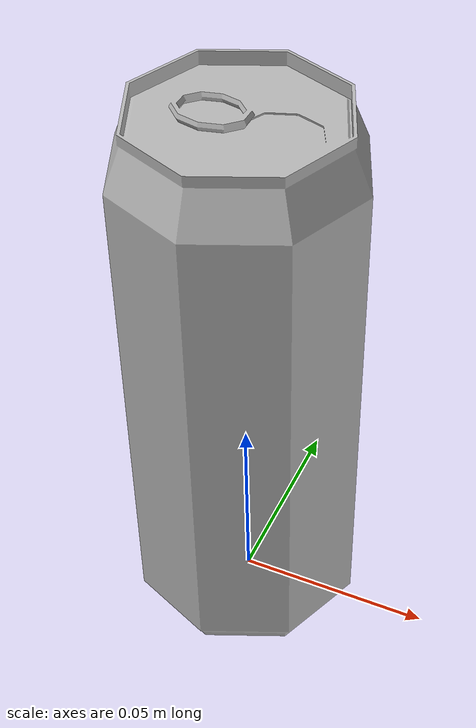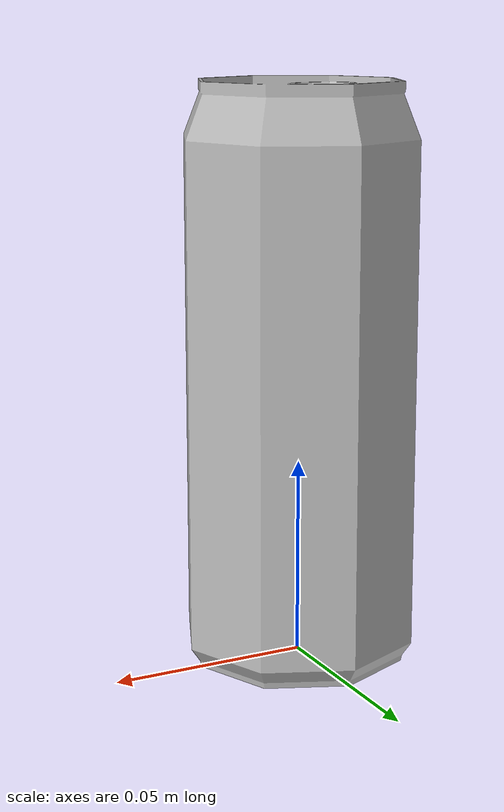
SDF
<?xml version="1.0"?>

<sdf version="1.6">
  <model name='Coke'>
    <static>true</static>
    <link name="body">
      <pose>0 0 0 0 0 0</pose>

        <visual name="visual">
          <geometry>
            <mesh><uri>model://Coke/meshes/coke.obj</uri></mesh>
          </geometry>
        </visual>

        <collision name="collision">
          <geometry>
            <mesh><uri>model://Coke/meshes/coke.obj</uri></mesh>
          </geometry>
        </collision>

        <!-- TODO: Replace with accurate values of mass and inertia -->
        <inertial>
          <mass>1.0</mass>
          <inertia>
            <ixx>0.003366666666666667</ixx>
            <iyy>0.0008666666666666667</iyy>
            <izz>0.0041666666666666675</izz>
          </inertia>
        </inertial>

    </link>

  </model>
</sdf>
